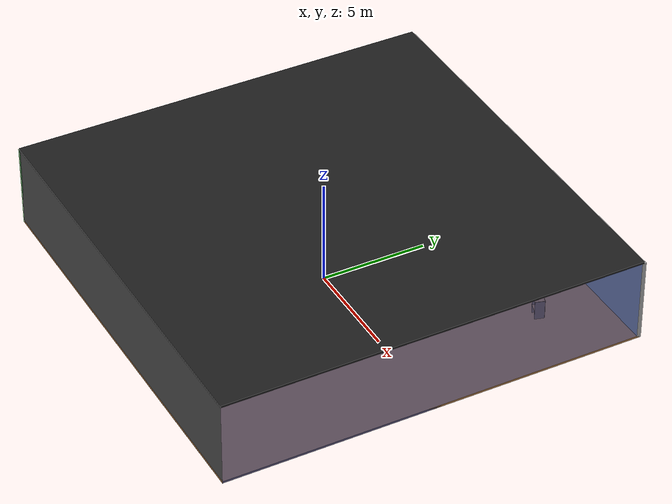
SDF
<sdf version="1.4">
 <world name="default">
  <physics type="ode">
   <max_step_size>0.001</max_step_size>
   <real_time_factor>1</real_time_factor>
   <real_time_update_rate>1000</real_time_update_rate>
   <gravity>0 0 -9.8</gravity>
  </physics>
  <scene><ambient>0.4 0.4 0.4 1</ambient><background>0.7 0.7 0.7 1</background><shadows>1</shadows></scene>
  <model name="Surrounding">
   <static>1</static>
   <link name="Ceiling">
    <collision name="Ceiling_Collision"><geometry><box><size>20 20 0.1</size></box></geometry></collision>
    <visual name="Ceiling_Visual">
     <geometry><box><size>20 20 0.1</size></box></geometry>
     <material>
      <script><uri>file://media/materials/scripts/gazebo.material</uri><name>Gazebo/Black</name></script>
     </material>
    </visual>
    <pose>0 0 4.05 0 0 0</pose>
   </link>
   <link name="Wall_South">
    <collision name="Wall_South_Collision">
     <geometry><box><size>20 0 4</size></box></geometry>
     <pose>0 0 2 0 -0 0</pose>
    </collision>
    <visual name="Wall_South_Visual">
     <pose>0 0 2 0 -0 0</pose>
     <geometry><box><size>20 0 4</size></box></geometry>
     <material>
      <script><uri>file://media/materials/scripts/gazebo.material</uri><name>Gazebo/DarkGrey</name></script>
     </material>
    </visual>
    <velocity_decay><linear>0</linear><angular>0</angular></velocity_decay>
    <pose>0 -10 0 0 -0 0</pose>
   </link>
   <link name="Wall_East">
    <collision name="Wall_21_Collision">
     <geometry><box><size>20 0 4</size></box></geometry>
     <pose>0 0 2 0 -0 0</pose>
    </collision>
    <visual name="Wall_21_Visual">
     <pose>0 0 2 0 -0 0</pose>
     <geometry><box><size>20 0 4</size></box></geometry>
     <material>
      <script><uri>file://media/materials/scripts/gazebo.material</uri><name>Gazebo/BlueTransparent</name></script>
     </material>
    </visual>
    <velocity_decay><linear>0</linear><angular>0</angular></velocity_decay>
    <pose>10 0 0 0 -0 1.5708</pose>
   </link>
   <link name="Wall_North">
    <collision name="Wall_22_Collision">
     <geometry><box><size>20 0.2 4</size></box></geometry>
     <pose>0 0 2 0 -0 0</pose>
    </collision>
    <visual name="Wall_22_Visual">
     <pose>0 0 2 0 -0 0</pose>
     <geometry><box><size>20 0.2 4</size></box></geometry>
     <material>
      <script><uri>file://media/materials/scripts/gazebo.material</uri><name>Gazebo/JointAnchor</name></script>
     </material>
    </visual>
    <velocity_decay><linear>0</linear><angular>0</angular></velocity_decay>
    <pose>0 10 0 0 -0 0</pose>
   </link>
   <link name="Wall_West">
    <collision name="Wall_23_Collision">
     <geometry><box><size>20 0.2 4</size></box></geometry>
     <pose>0 0 2 0 -0 0</pose>
    </collision>
    <visual name="Wall_23_Visual">
     <pose>0 0 2 0 -0 0</pose>
     <geometry><box><size>20 0.2 4</size></box></geometry>
     <material>
      <script><uri>file://media/materials/scripts/gazebo.material</uri><name>Gazebo/GreenTransparent</name></script>
     </material>
    </visual>
    <velocity_decay><linear>0</linear><angular>0</angular></velocity_decay>
    <pose>-10 0 0 0 0 -1.5708</pose>
   </link>
   <link name="Ground_link">
    <collision name="collision">
     <pose>0 0 .05 0 -0 0</pose>
     <geometry><box><size>20 20 0.1</size></box></geometry>
    </collision>
    <visual name="visual">
     <pose>0 0 .05 0 -0 0</pose>
     <geometry><box><size>20 20 0.1</size></box></geometry>
     <material>
      <script><uri>file://media/materials/scripts/gazebo.material</uri><name>Gazebo/WoodPallet</name></script>
     </material>
    </visual>
   </link>
   <static>1</static>
  </model>
  <spherical_coordinates>
   <surface_model>EARTH_WGS84</surface_model>
   <latitude_deg>0</latitude_deg>
   <longitude_deg>0</longitude_deg>
   <elevation>0</elevation>
   <heading_deg>0</heading_deg>
  </spherical_coordinates>
  <light name="lightball_0" type="diffuse">
   <diffuse>0.8 0.8 0.8 1</diffuse>
   <specular>0.2 0.2 0.2 1</specular>
   <attenuation>
    <range>100</range>
    <constant>0.7</constant>
    <linear>0.01</linear>
    <quadratic>0.001</quadratic>
   </attenuation>
   <direction>-0.5 0.1 -0.9</direction>
   <pose>6.06805343411 1.3870276776 2.74297533581 0 0 0</pose>
  </light>
  <light name="lightball_1" type="diffuse">
   <diffuse>0.8 0.8 0.8 1</diffuse>
   <specular>0.2 0.2 0.2 1</specular>
   <attenuation>
    <range>100</range>
    <constant>0.7</constant>
    <linear>0.01</linear>
    <quadratic>0.001</quadratic>
   </attenuation>
   <direction>-0.5 0.1 -0.9</direction>
   <pose>5.75623853516 -9.72103066511 0.641324394654 0 0 0</pose>
  </light>
  <light name="lightball_2" type="diffuse">
   <diffuse>0.8 0.8 0.8 1</diffuse>
   <specular>0.2 0.2 0.2 1</specular>
   <attenuation>
    <range>100</range>
    <constant>0.7</constant>
    <linear>0.01</linear>
    <quadratic>0.001</quadratic>
   </attenuation>
   <direction>-0.5 0.1 -0.9</direction>
   <pose>-0.905360004392 8.77070540383 2.63591869682 0 0 0</pose>
  </light>
  <light name="lightball_3" type="diffuse">
   <diffuse>0.8 0.8 0.8 1</diffuse>
   <specular>0.2 0.2 0.2 1</specular>
   <attenuation>
    <range>100</range>
    <constant>0.7</constant>
    <linear>0.01</linear>
    <quadratic>0.001</quadratic>
   </attenuation>
   <direction>-0.5 0.1 -0.9</direction>
   <pose>-0.274243710534 -7.3626400488 3.50839352644 0 0 0</pose>
  </light>
  <light name="lightball_4" type="diffuse">
   <diffuse>0.8 0.8 0.8 1</diffuse>
   <specular>0.2 0.2 0.2 1</specular>
   <attenuation>
    <range>100</range>
    <constant>0.7</constant>
    <linear>0.01</linear>
    <quadratic>0.001</quadratic>
   </attenuation>
   <direction>-0.5 0.1 -0.9</direction>
   <pose>-4.11758762848 9.38505441484 2.05888854746 0 0 0</pose>
  </light>
  <light name="lightball_5" type="diffuse">
   <diffuse>0.8 0.8 0.8 1</diffuse>
   <specular>0.2 0.2 0.2 1</specular>
   <attenuation>
    <range>100</range>
    <constant>0.7</constant>
    <linear>0.01</linear>
    <quadratic>0.001</quadratic>
   </attenuation>
   <direction>-0.5 0.1 -0.9</direction>
   <pose>9.02375219377 -1.28343831435 1.91143586531 0 0 0</pose>
  </light>
  <light name="lightball_6" type="diffuse">
   <diffuse>0.8 0.8 0.8 1</diffuse>
   <specular>0.2 0.2 0.2 1</specular>
   <attenuation>
    <range>100</range>
    <constant>0.7</constant>
    <linear>0.01</linear>
    <quadratic>0.001</quadratic>
   </attenuation>
   <direction>-0.5 0.1 -0.9</direction>
   <pose>-2.88555955005 7.13448035355 0.616529401144 0 0 0</pose>
  </light>
  <include>
   <uri>model://textured_shapes</uri>
   <pose>-3.76171936414 -7.58996072705 0 0 0 3.10580058549</pose>
  </include>
  <include><uri>model://table</uri><pose>2.06002168112 -4.01761398919 0 0 0 2.23120865389</pose></include>
  <include>
   <uri>model://textured_shapes</uri>
   <pose>1.66781141153 1.23791446324 0 0 0 0.794885411014</pose>
  </include>
  <include><uri>model://cabinet</uri><pose>3.8510311269 -4.63243867687 0 0 0 0.287957257493</pose></include>
  <include><uri>model://cabinet</uri><pose>6.75622504708 6.89943088179 0 0 0 1.2677184296</pose></include>
 </world>
</sdf>

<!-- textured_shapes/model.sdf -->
<sdf version="1.6">
  <model name="textured_shapes">
    <pose>0 0 0.5 0 0 0</pose>
    <link name="box">
      <pose>0 -1.5 0 0 0 0</pose>
      <collision name="collision">
        <geometry>
          <box>
            <size>1 1 1</size>
          </box>
        </geometry>
      </collision>
      <visual name="visual">
        <geometry>
          <box>
            <size>1 1 1</size>
          </box>
        </geometry>
        <material>
          <script>
            <uri>model://../model_source/models/textured_shapes/materials/scripts</uri>
            <uri>model://../model_source/models/textured_shapes/materials/textures</uri>
            <name>TexturedShape/Squares</name>
          </script>
        </material>
      </visual>
    </link>
    <link name="sphere">
      <collision name="collision">
        <geometry>
          <sphere>
            <radius>0.5</radius>
          </sphere>
        </geometry>
      </collision>
      <visual name="visual">
        <geometry>
          <sphere>
            <radius>0.5</radius>
          </sphere>
        </geometry>
        <material>
          <script>
            <uri>model://../model_source/models/textured_shapes/materials/scripts</uri>
            <uri>model://../model_source/models/textured_shapes/materials/textures</uri>
            <name>TexturedShape/Squares</name>
          </script>
        </material>
      </visual>
    </link>
    <link name="cylinder">
      <pose>0 1.5 0 0 0 0</pose>
      <collision name="collision">
        <geometry>
          <cylinder>
            <radius>0.5</radius>
            <length>1</length>
          </cylinder>
        </geometry>
      </collision>
      <visual name="visual">
        <geometry>
          <cylinder>
            <radius>0.5</radius>
            <length>1</length>
          </cylinder>
        </geometry>
        <material>
          <script>
            <uri>model://../model_source/models/textured_shapes/materials/scripts</uri>
            <uri>model://../model_source/models/textured_shapes/materials/textures</uri>
            <name>TexturedShape/Squares</name>
          </script>
        </material>
      </visual>
    </link>
  </model>
</sdf>

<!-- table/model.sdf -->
<sdf version="1.5">
  <model name="table">
    <static>true</static>
    <link name="link">
      <collision name="surface">
        <pose>0 0 1.0 0 0 0</pose>
        <geometry>
          <box>
            <size>1.5 0.8 0.03</size>
          </box>
        </geometry>
        <surface>
          <friction>
            <ode>
              <mu>0.6</mu>
              <mu2>0.6</mu2>
            </ode>
          </friction>
        </surface>
      </collision>
      <visual name="visual1">
        <pose>0 0 1.0 0 0 0</pose>
        <geometry>
          <box>
            <size>1.5 0.8 0.03</size>
          </box>
        </geometry>
        <material>
          <script>
            <uri>model://media/materials/scripts/gazebo.material</uri>
            <name>Gazebo/Wood</name>
          </script>
        </material>
      </visual>
      <collision name="front_left_leg">
        <pose>0.68 0.38 0.5 0 0 0</pose>
        <geometry>
          <cylinder>
            <radius>0.02</radius>
            <length>1.0</length>
          </cylinder>
        </geometry>
      </collision>
      <visual name="front_left_leg">
        <pose>0.68 0.38 0.5 0 0 0</pose>
        <geometry>
          <cylinder>
            <radius>0.02</radius>
            <length>1.0</length>
          </cylinder>
        </geometry>
        <material>
          <script>
            <uri>model://media/materials/scripts/gazebo.material</uri>
            <name>Gazebo/Grey</name>
          </script>
        </material>
      </visual>
      <collision name="front_right_leg">
        <pose>0.68 -0.38 0.5 0 0 0</pose>
        <geometry>
          <cylinder>
            <radius>0.02</radius>
            <length>1.0</length>
          </cylinder>
        </geometry>
      </collision>
      <visual name="front_right_leg">
        <pose>0.68 -0.38 0.5 0 0 0</pose>
        <geometry>
          <cylinder>
            <radius>0.02</radius>
            <length>1.0</length>
          </cylinder>
        </geometry>
        <material>
          <script>
            <uri>model://media/materials/scripts/gazebo.material</uri>
            <name>Gazebo/Grey</name>
          </script>
        </material>
      </visual>
      <collision name="back_right_leg">
        <pose>-0.68 -0.38 0.5 0 0 0</pose>
        <geometry>
          <cylinder>
            <radius>0.02</radius>
            <length>1.0</length>
          </cylinder>
        </geometry>
      </collision>
      <visual name="back_right_leg">
        <pose>-0.68 -0.38 0.5 0 0 0</pose>
        <geometry>
          <cylinder>
            <radius>0.02</radius>
            <length>1.0</length>
          </cylinder>
        </geometry>
        <material>
          <script>
            <uri>model://media/materials/scripts/gazebo.material</uri>
            <name>Gazebo/Grey</name>
          </script>
        </material>
      </visual>
      <collision name="back_left_leg">
        <pose>-0.68 0.38 0.5 0 0 0</pose>
        <geometry>
          <cylinder>
            <radius>0.02</radius>
            <length>1.0</length>
          </cylinder>
        </geometry>
      </collision>
      <visual name="back_left_leg">
        <pose>-0.68 0.38 0.5 0 0 0</pose>
        <geometry>
          <cylinder>
            <radius>0.02</radius>
            <length>1.0</length>
          </cylinder>
        </geometry>
        <material>
          <script>
            <uri>model://media/materials/scripts/gazebo.material</uri>
            <name>Gazebo/Grey</name>
          </script>
        </material>
      </visual>
    </link>
  </model>
</sdf>

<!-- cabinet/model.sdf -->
<sdf version="1.5">
  <model name="cabinet">
    <static>true</static>
    <link name="cabinet_bottom_plate">
      <inertial>
        <pose>0 0 -1 0 0 0</pose>
        <inertia>
          <ixx>2.050000</ixx>
          <ixy>0</ixy>
          <ixz>0</ixz>
          <iyy>2.050000</iyy>
          <iyz>0</iyz>
          <izz>2.050000</izz>
        </inertia>
        <mass>25.000000</mass>
      </inertial>
      <collision name="cabinet_bottom_plate_geom">
        <pose>0 0 0.010000 0 0 0</pose>
        <geometry>
          <box>
            <size>0.450000 0.450000 0.020000</size>
          </box>
        </geometry>
      </collision>
      <visual name="cabinet_bottom_plate_geom_visual">
        <pose>0 0 0.010000 0 0 0</pose>
        <geometry>
          <box>
            <size>0.450000 0.450000 0.020000</size>
          </box>
        </geometry>
        <material>
          <script>
            <uri>model://media/materials/scripts/gazebo.material</uri>
            <name>Gazebo/Wood</name>
          </script>
        </material>
      </visual>
      <collision name="cabinet_bottom_plate_geom_cabinet_back_plate">
        <pose>0.235000 0 0.510000 0 0 0</pose>
        <geometry>
          <box>
            <size>0.020000 0.450000 1.020000</size>
          </box>
        </geometry>
      </collision>
      <visual name="cabinet_bottom_plate_geom_cabinet_back_plate_visual">
        <pose>0.235000 0 0.510000 0 0 0</pose>
        <geometry>
          <box>
            <size>0.020000 0.450000 1.020000</size>
          </box>
        </geometry>
        <material>
          <script>
            <uri>model://media/materials/scripts/gazebo.material</uri>
            <name>Gazebo/Wood</name>
          </script>
        </material>
      </visual>
      <collision name="cabinet_bottom_plate_geom_cabinet_left_plate">
        <pose>0 0.235000 0.510000 0 0 0</pose>
        <geometry>
          <box>
            <size>0.450000 0.020000 1.020000</size>
          </box>
        </geometry>
      </collision>
      <visual name="cabinet_bottom_plate_geom_cabinet_left_plate_visual">
        <pose>0 0.235000 0.510000 0 0 0</pose>
        <geometry>
          <box>
            <size>0.450000 0.020000 1.020000</size>
          </box>
        </geometry>
        <material>
          <script>
            <uri>model://media/materials/scripts/gazebo.material</uri>
            <name>Gazebo/Wood</name>
          </script>
        </material>
      </visual>
      <collision name="cabinet_bottom_plate_geom_cabinet_middle_plate">
        <pose>0 0 0.510000 0 0 0</pose>
        <geometry>
          <box>
            <size>0.450000 0.450000 0.020000</size>
          </box>
        </geometry>
      </collision>
      <visual name="cabinet_bottom_plate_geom_cabinet_middle_plate_visual">
        <pose>0 0 0.510000 0 0 0</pose>
        <geometry>
          <box>
            <size>0.450000 0.450000 0.020000</size>
          </box>
        </geometry>
        <material>
          <script>
            <uri>model://media/materials/scripts/gazebo.material</uri>
            <name>Gazebo/Wood</name>
          </script>
        </material>
      </visual>
      <collision name="cabinet_bottom_plate_geom_cabinet_right_plate">
        <pose>0 -0.235000 0.510000 0 0 0</pose>
        <geometry>
          <box>
            <size>0.450000 0.020000 1.020000</size>
          </box>
        </geometry>
      </collision>
      <visual name="cabinet_bottom_plate_geom_cabinet_right_plate_visual">
        <pose>0 -0.235000 0.510000 0 0 0</pose>
        <geometry>
          <box>
            <size>0.450000 0.020000 1.020000</size>
          </box>
        </geometry>
        <material>
          <script>
            <uri>model://media/materials/scripts/gazebo.material</uri>
            <name>Gazebo/Wood</name>
          </script>
        </material>
      </visual>
      <collision name="cabinet_bottom_plate_geom_cabinet_top_plate">
        <pose>0 0 1.010000 0 0 0</pose>
        <geometry>
          <box>
            <size>0.450000 0.450000 0.020000</size>
          </box>
        </geometry>
      </collision>
      <visual name="cabinet_bottom_plate_geom_cabinet_top_plate_visual">
        <pose>0 0 1.010000 0 0 0</pose>
        <geometry>
          <box>
            <size>0.450000 0.450000 0.020000</size>
          </box>
        </geometry>
        <material>
          <script>
            <uri>model://media/materials/scripts/gazebo.material</uri>
            <name>Gazebo/Wood</name>
          </script>
        </material>
      </visual>
    </link>
  </model>
</sdf>
